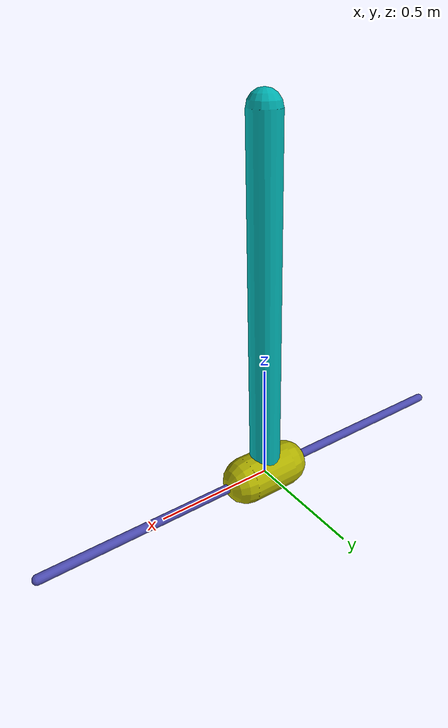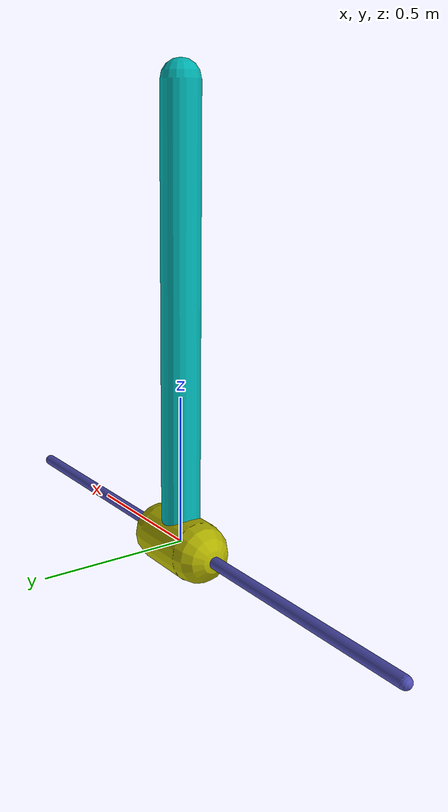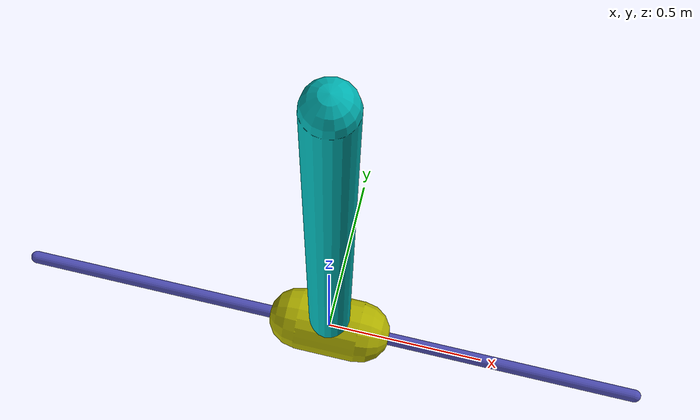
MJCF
<mujoco model="inverted pendulum">
	<compiler inertiafromgeom="true" />
	<default>
		<joint armature="0" damping="1" limited="true" />
		<geom contype="0" friction="1 0.1 0.1" rgba="0.7 0.7 0 1" />
		<tendon />
		<motor ctrlrange="-3 3" />
	</default>
	<option gravity="0 0 -9.81" integrator="RK4" timestep="0.02" />
	<size nstack="3000" />
	<worldbody>

		<geom name="rail" pos="0 0 0" quat="0.707 0 0.707 0" rgba="0.3 0.3 0.7 1" size="0.02 1" type="capsule" />
		<body name="cart" pos="0 0 0">
			<joint axis="1 0 0" limited="true" name="slider" pos="0 0 0" range="-1 1" type="slide" />
			<geom name="cart" pos="0 0 0" quat="0.707 0 0.707 0" size="0.1 0.1" type="capsule" />
			<body name="pole" pos="0 0 0">
				<joint axis="0 1 0" name="hinge" pos="0 0 0" range="-90 90" type="hinge" />
				<geom fromto="0 0 0 0.001 0 1.500000" name="cpole" rgba="0 0.7 0.7 1" size="0.065000 0.3" type="capsule" />

			</body>
		</body>
	</worldbody>
	<actuator>
		<motor ctrllimited="true" ctrlrange="-3 3" gear="100" joint="slider" name="slide" />
	</actuator>
</mujoco>
